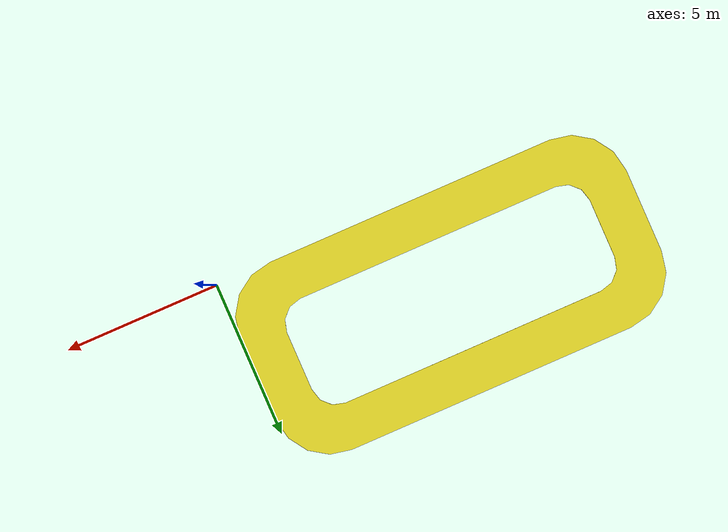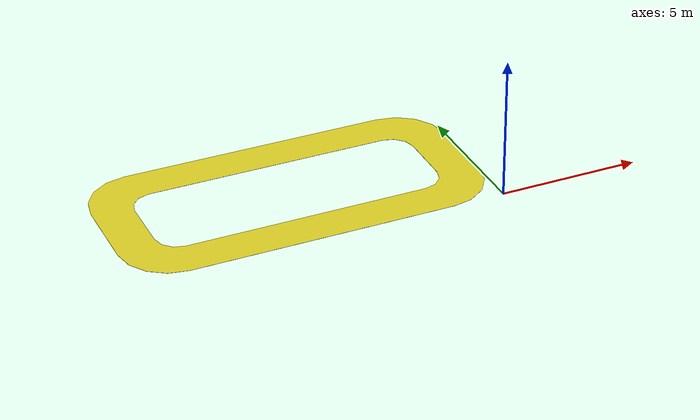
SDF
<?xml version="1.0" ?>
<sdf version="1.6">
  <model name="track">
    <static>true</static>
    <pose frame=''>0. 0. 0.003 1.57075 0. 0.</pose>
    <link name="link">
      <collision name="collision">
        <geometry>
          <mesh>
            <uri>model://track/meshes/track.stl</uri>
            <scale>0.001 0.001 0.001</scale>
          </mesh>
        </geometry>
      </collision>
      <visual name="visual">
        <geometry>
          <mesh>
            <uri>model://track/meshes/track.stl</uri>
            <scale>0.001 0.001 0.001</scale>
          </mesh>
        </geometry>
      <material>
          <script>
            <name>Gazebo/Yellow</name>
            <uri>file://media/materials/scripts/gazebo.material</uri>
          </script>
        </material>
      </visual>
    </link>
  </model>
</sdf>
